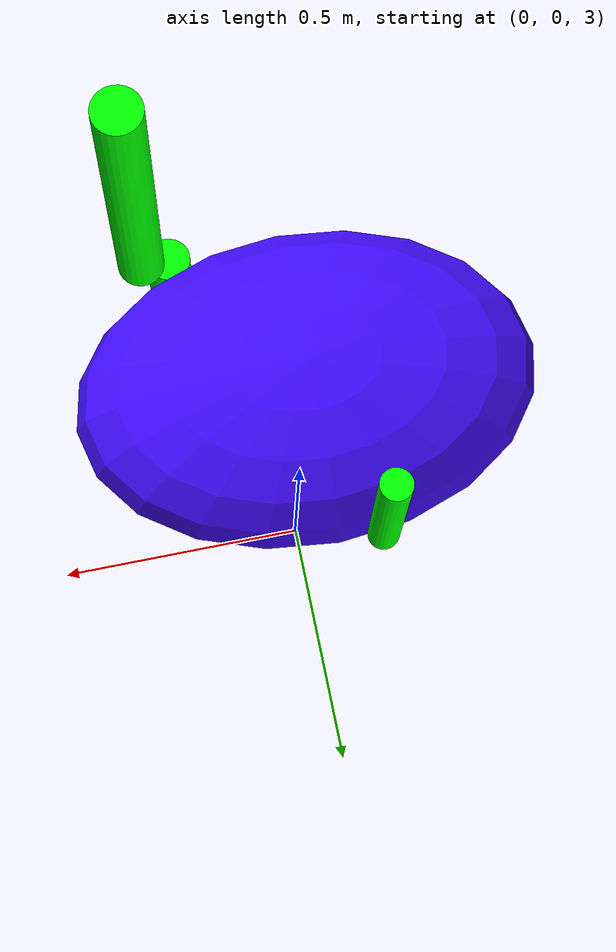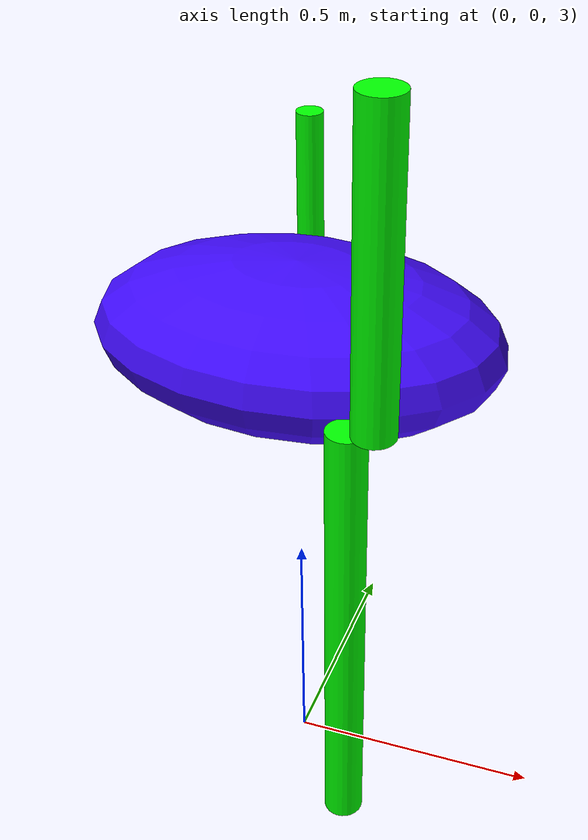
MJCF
<mujoco model="unnamed_model">
  <option timestep="0.01"/>
  <visual>
    <headlight ambient="0.5 0.5 0.5"/>
  </visual>
  <default>
    <default class="/"/>
  </default>
  <worldbody>
    <light name="//unnamed_light_0" class="/" pos="0 0 3" dir="0 0 -1" diffuse="0.5 0.5 0.5"/>
    <geom name="//unnamed_geom_0" class="/" type="plane" size="50 50 0.10000000000000001"/>
    <body name="//unnamed_body_0" pos="0 0 4">
      <joint name="//unnamed_joint_0" class="/" type="free"/>
      <geom name="//unnamed_geom_1" class="/" type="ellipsoid" size="0.38548075575387841 0.26798713171656741 0.1452004561483676" rgba="0.247 0.035000000000000003 0.97999999999999998 1" pos="0 0 0"/>
      <body name="limb0" pos="-0.07214536872898869 0.26798713171656741 0.15427922134028071">
        <geom name="//unnamed_geom_2" class="/" type="cylinder" size="0.025992100353521487 0.15427922134028071" rgba="0 1 0 1"/>
        <joint name="0_joint" class="/" type="hinge" pos="0 0 -0.15427922134028071" axis="0 1 0" range="-45 45"/>
      </body>
      <body name="limb1" pos="0.22825054707942577 -0.26798713171656741 0.28723943196440571">
        <geom name="//unnamed_geom_3" class="/" type="cylinder" size="0.039135236712299862 0.28723943196440571" rgba="0 1 0 1"/>
        <joint name="1_joint" class="/" type="hinge" pos="0 0 -0.28723943196440571" axis="0 1 0" range="-45 45"/>
      </body>
      <body name="limb2" pos="0.18172725869811557 -0.26798713171656741 -0.44909702097792314">
        <geom name="//unnamed_geom_4" class="/" type="cylinder" size="0.036787874496359084 0.44909702097792314" rgba="0 1 0 1"/>
        <joint name="2_joint" class="/" type="hinge" pos="0 0 0.44909702097792314" axis="0 1 0" range="-45 45"/>
      </body>
    </body>
  </worldbody>
  <actuator>
    <motor name="motor_0_joint" class="/" ctrllimited="true" ctrlrange="-45 45" gear="10" joint="0_joint"/>
    <motor name="motor_1_joint" class="/" ctrllimited="true" ctrlrange="-45 45" gear="10" joint="1_joint"/>
    <motor name="motor_2_joint" class="/" ctrllimited="true" ctrlrange="-45 45" gear="10" joint="2_joint"/>
  </actuator>
</mujoco>
